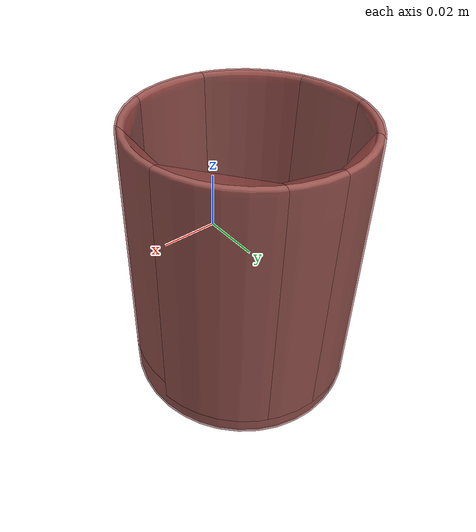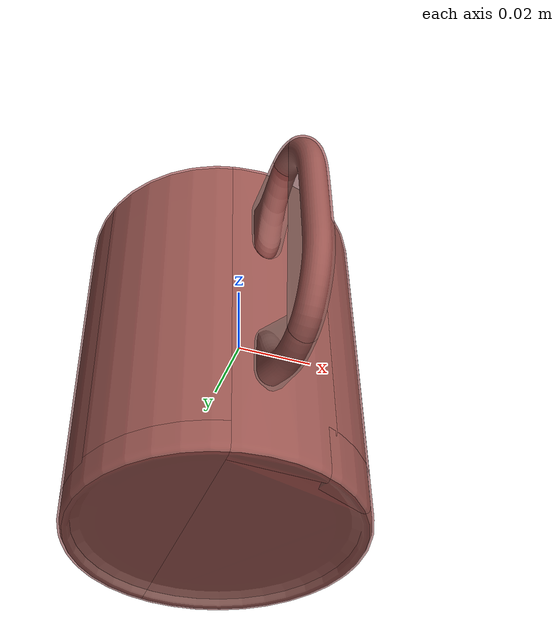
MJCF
<mujoco model="mug_33">
  <asset>
    <mesh file="visual/model_normalized_0.obj" name="model_normalized_0_vis" scale="0.11 0.11 0.11" refquat="1.0 0.0 0.0 0.0"/>
    <texture type="2d" name="image0" file="visual/image0.png"/>
    <material name="Mug1ps" texture="image0" specular="0.5" shininess="0.25"/>
    <mesh file="collision/collision_mesh_collision_0.obj" name="mug_collision_mesh_0" scale="0.11 0.11 0.11" refquat="1.0 0.0 0.0 0.0"/>
    <mesh file="collision/collision_mesh_collision_1.obj" name="mug_collision_mesh_1" scale="0.11 0.11 0.11" refquat="1.0 0.0 0.0 0.0"/>
    <mesh file="collision/collision_mesh_collision_2.obj" name="mug_collision_mesh_2" scale="0.11 0.11 0.11" refquat="1.0 0.0 0.0 0.0"/>
    <mesh file="collision/collision_mesh_collision_3.obj" name="mug_collision_mesh_3" scale="0.11 0.11 0.11" refquat="1.0 0.0 0.0 0.0"/>
    <mesh file="collision/collision_mesh_collision_4.obj" name="mug_collision_mesh_4" scale="0.11 0.11 0.11" refquat="1.0 0.0 0.0 0.0"/>
    <mesh file="collision/collision_mesh_collision_5.obj" name="mug_collision_mesh_5" scale="0.11 0.11 0.11" refquat="1.0 0.0 0.0 0.0"/>
    <mesh file="collision/collision_mesh_collision_6.obj" name="mug_collision_mesh_6" scale="0.11 0.11 0.11" refquat="1.0 0.0 0.0 0.0"/>
    <mesh file="collision/collision_mesh_collision_7.obj" name="mug_collision_mesh_7" scale="0.11 0.11 0.11" refquat="1.0 0.0 0.0 0.0"/>
    <mesh file="collision/collision_mesh_collision_8.obj" name="mug_collision_mesh_8" scale="0.11 0.11 0.11" refquat="1.0 0.0 0.0 0.0"/>
    <mesh file="collision/collision_mesh_collision_9.obj" name="mug_collision_mesh_9" scale="0.11 0.11 0.11" refquat="1.0 0.0 0.0 0.0"/>
    <mesh file="collision/collision_mesh_collision_10.obj" name="mug_collision_mesh_10" scale="0.11 0.11 0.11" refquat="1.0 0.0 0.0 0.0"/>
    <mesh file="collision/collision_mesh_collision_11.obj" name="mug_collision_mesh_11" scale="0.11 0.11 0.11" refquat="1.0 0.0 0.0 0.0"/>
    <mesh file="collision/collision_mesh_collision_12.obj" name="mug_collision_mesh_12" scale="0.11 0.11 0.11" refquat="1.0 0.0 0.0 0.0"/>
    <mesh file="collision/collision_mesh_collision_13.obj" name="mug_collision_mesh_13" scale="0.11 0.11 0.11" refquat="1.0 0.0 0.0 0.0"/>
    <mesh file="collision/collision_mesh_collision_14.obj" name="mug_collision_mesh_14" scale="0.11 0.11 0.11" refquat="1.0 0.0 0.0 0.0"/>
    <mesh file="collision/collision_mesh_collision_15.obj" name="mug_collision_mesh_15" scale="0.11 0.11 0.11" refquat="1.0 0.0 0.0 0.0"/>
  </asset>
  <default>
    <default class="region">
      <geom group="1" conaffinity="0" contype="0" rgba="0 1 0 0"/>
    </default>
    <default class="collision">
      <geom group="0" rgba="0.5 0 0 0.5" density="1000.0"/>
    </default>
  </default>
  <worldbody>
    <body>
      <body name="object">
        <geom solimp="0.998 0.998 0.001" solref="0.001 1" density="100" friction="0.95 0.3 0.1" type="mesh" mesh="model_normalized_0_vis" conaffinity="0" contype="0" group="1" material="Mug1ps"/>
        <geom class="region" name="reg_bbox" type="box" pos="0.0 2.836019999999606e-05 -1.6535749999997684e-05" size="0.0385277761 0.0555300317 0.04804395475"/>
        <geom mesh="mug_collision_mesh_0" type="mesh" class="collision"/>
        <geom mesh="mug_collision_mesh_1" type="mesh" class="collision"/>
        <geom mesh="mug_collision_mesh_2" type="mesh" class="collision"/>
        <geom mesh="mug_collision_mesh_3" type="mesh" class="collision"/>
        <geom mesh="mug_collision_mesh_4" type="mesh" class="collision"/>
        <geom mesh="mug_collision_mesh_5" type="mesh" class="collision"/>
        <geom mesh="mug_collision_mesh_6" type="mesh" class="collision"/>
        <geom mesh="mug_collision_mesh_7" type="mesh" class="collision"/>
        <geom mesh="mug_collision_mesh_8" type="mesh" class="collision"/>
        <geom mesh="mug_collision_mesh_9" type="mesh" class="collision"/>
        <geom mesh="mug_collision_mesh_10" type="mesh" class="collision"/>
        <geom mesh="mug_collision_mesh_11" type="mesh" class="collision"/>
        <geom mesh="mug_collision_mesh_12" type="mesh" class="collision"/>
        <geom mesh="mug_collision_mesh_13" type="mesh" class="collision"/>
        <geom mesh="mug_collision_mesh_14" type="mesh" class="collision"/>
        <geom mesh="mug_collision_mesh_15" type="mesh" class="collision"/>
        <geom rgba="0 0 0 0" size="0.037 0.035" pos="0 0.017 0.0" type="cylinder" name="liquid" class="region"/>
        <geom rgba="0 0 0 0 " size="0.035 0.044" pos="0 0.017 0.003" type="cylinder" name="reg_int" class="region"/>
      </body>
    </body>
  </worldbody>
</mujoco>
